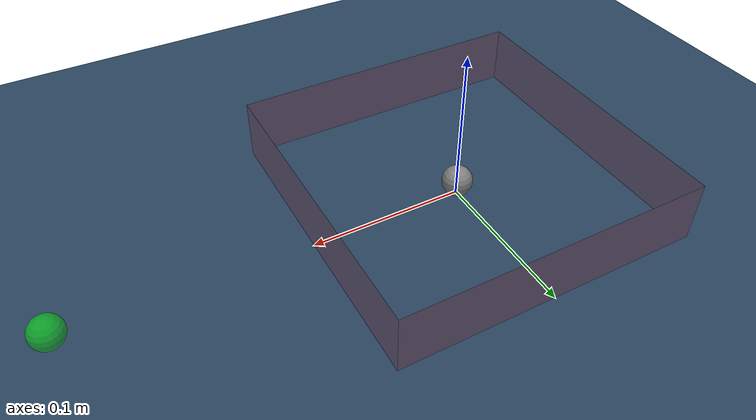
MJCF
<mujoco model="particle_constrained_scene">
  <!-- Model that includes like lighting and a ground. -->
  <include file="particle_constrained.xml"/>

  <statistic center="0 0 0" extent="0.9"/>

  <visual>
    <headlight diffuse="0.6 0.6 0.6" ambient="0.3 0.3 0.3" specular="0 0 0"/>
    <rgba haze="0.15 0.25 0.35 1"/>
  </visual>

  <asset>
    <texture type="skybox" builtin="gradient" rgb1="0.3 0.5 0.7" rgb2="0 0 0" width="512" height="3072"/>
    <texture type="2d" name="groundplane" builtin="checker" mark="edge" rgb1="0.2 0.3 0.4" rgb2="0.1 0.2 0.3"
      markrgb="0.8 0.8 0.8" width="300" height="300"/>
    <material name="groundplane" texture="groundplane" texuniform="true" texrepeat="5 5" reflectance="0.2"/>
  </asset>

  <worldbody>
    <light pos="0 0 1"/>
    <geom name="floor" size="0 0 .125" type="plane" material="groundplane"/>
  </worldbody>

</mujoco>

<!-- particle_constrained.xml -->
<mujoco model="particle_constrained">
  <option timestep="0.01" iterations="1" ls_iterations="4">
    <flag contact="disable" eulerdamp="disable"/>
  </option>

  <default>
    <joint type="hinge" axis="0 0 1" limited="true" range="-.29 .29" damping="1" />
    <motor gear=".1" ctrlrange="-1 1" ctrllimited="true" />
  </default>

  <worldbody>
    <body name="goal" mocap="true" pos="0.25 0 0.01" quat="1 0 0 0">
      <geom type="sphere" size=".01" contype="0" conaffinity="0" rgba="0 1 0 .5" />
    </body>

    <geom name="wall_x" type="plane" pos="-.1 0 .02" zaxis="1 0 0" size=".02 .1 .02" rgba="1 0 0 .1"/>
    <geom name="wall_y" type="plane" pos="0 -.1 .02" zaxis="0 1 0" size=".1 .02 .02" rgba="1 0 0 .1"/>
    <geom name="wall_neg_x" type="plane" pos=".1 0 .02" zaxis="-1 0 0" size=".02 .1 .02" rgba="1 0 0 .1"/>
    <geom name="wall_neg_y" type="plane" pos="0 .1 .02" zaxis="0 -1 0" size=".1 .02 .02" rgba="1 0 0 .1"/>

    <body name="pointmass" pos="0 0 .01">
      <camera name="cam0" pos="0 -0.3 0.3" xyaxes="1 0 0 0 0.7 0.7" />
      <joint name="root_x" type="slide" pos="0 0 0" axis="1 0 0" />
      <joint name="root_y" type="slide" pos="0 0 0" axis="0 1 0" />
      <geom name="pointmass" type="sphere" size=".01" mass=".3" />
      <site name="pointmass" pos="0 0 0" size="0.01" />
    </body>
  </worldbody>

  <actuator>
    <motor name="x_motor" joint="root_x" gear="1" ctrllimited="true" ctrlrange="-1 1" />
    <motor name="y_motor" joint="root_y" gear="1" ctrllimited="true" ctrlrange="-1 1" />
  </actuator>
</mujoco>
